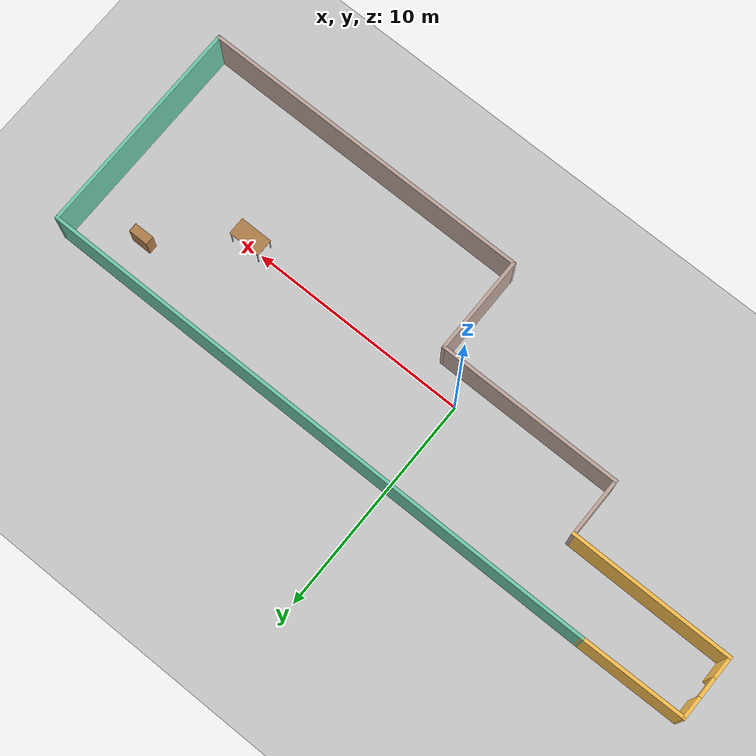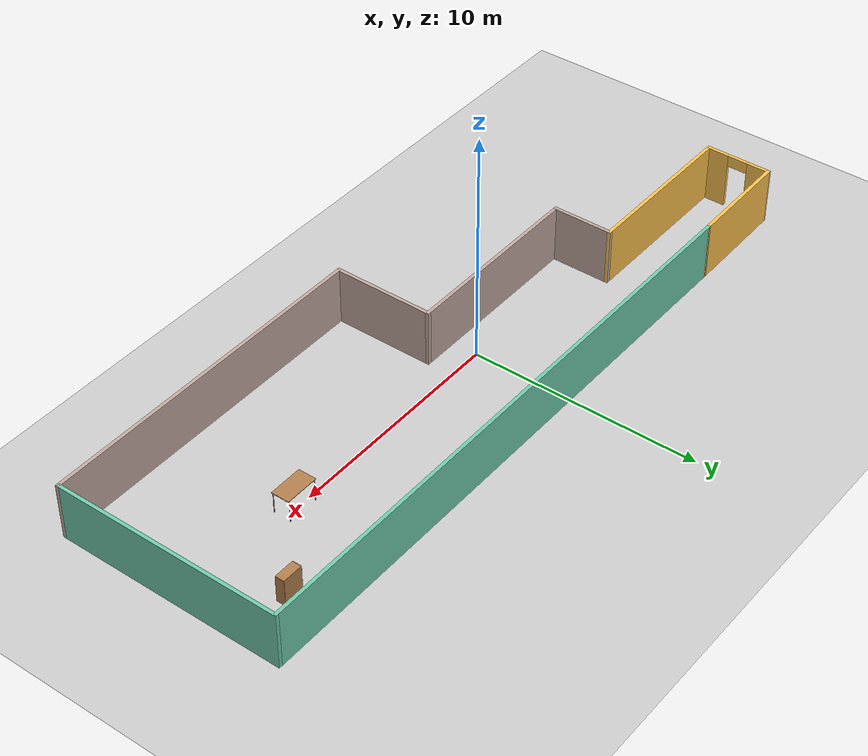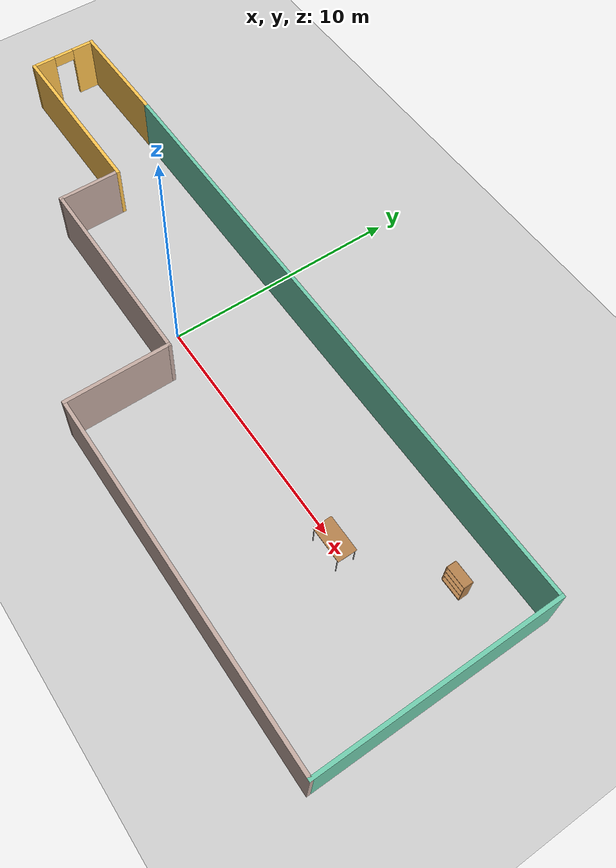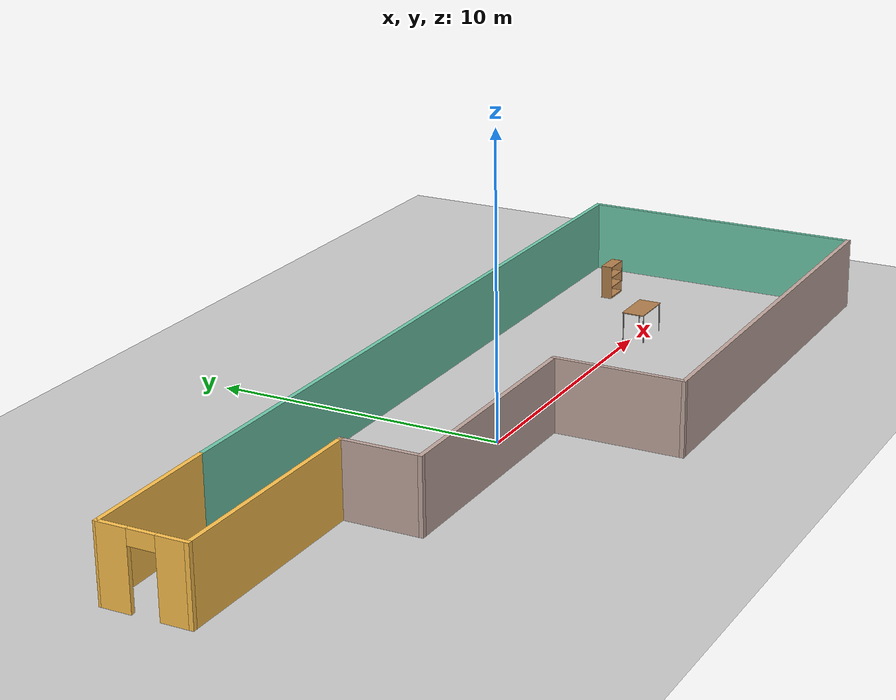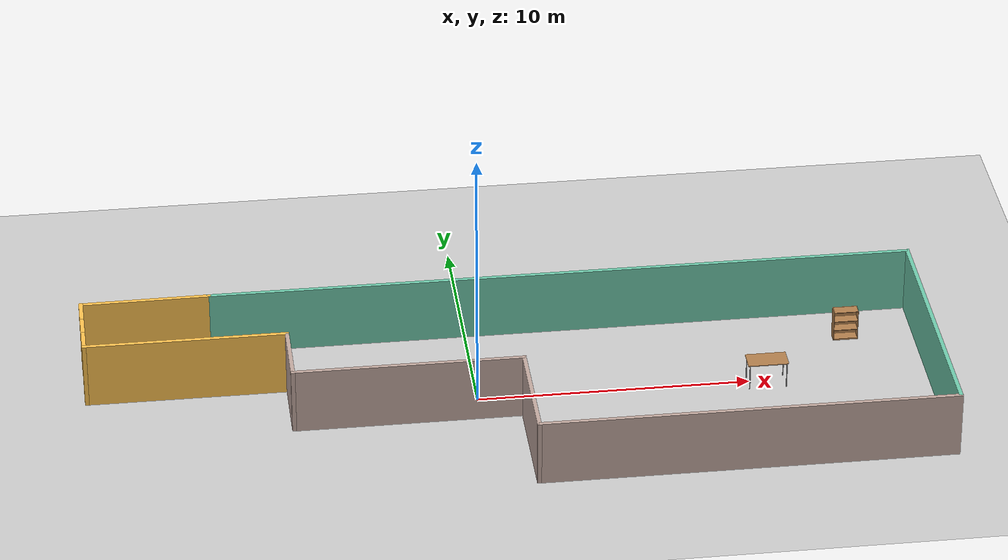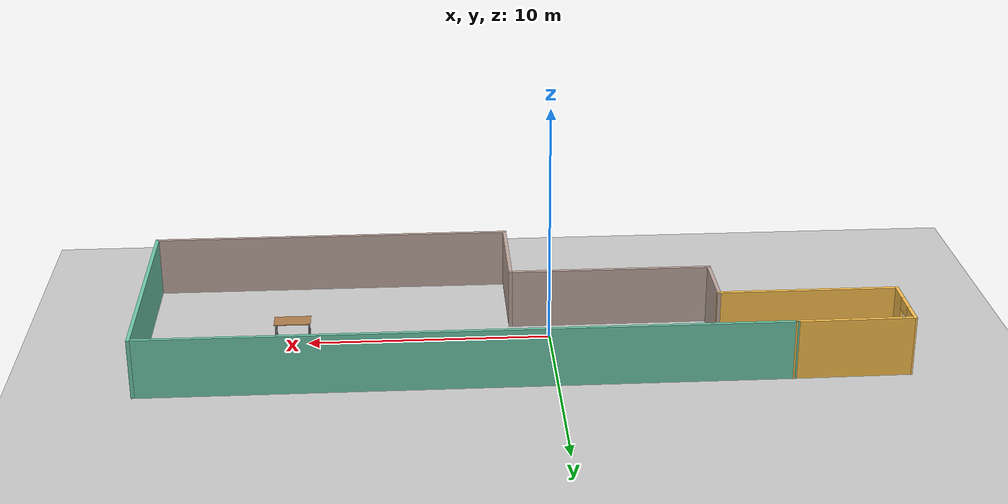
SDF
<sdf version="1.7">
 <world name="default">
  <light name="sun" type="directional">
   <pose>0 0 10 0 -0 0</pose>
   <diffuse>0.8 0.8 0.8 1</diffuse>
   <specular>0.2 0.2 0.2 1</specular>
   <attenuation>
    <range>1000</range>
    <constant>0.9</constant>
    <linear>0.01</linear>
    <quadratic>0.001</quadratic>
   </attenuation>
   <direction>-0.5 0.1 -0.9</direction>
   <spot><inner_angle>0</inner_angle><outer_angle>0</outer_angle><falloff>0</falloff></spot>
  </light>
  <model name="ground_plane">
   <static>1</static>
   <link name="link">
    <collision name="collision">
     <geometry><plane><normal>0 0 1</normal><size>100 100</size></plane></geometry>
     <surface><friction><ode><mu>100</mu><mu2>50</mu2></ode></friction></surface>
    </collision>
    <visual name="visual">
     <cast_shadows>0</cast_shadows>
     <geometry><plane><normal>0 0 1</normal><size>100 100</size></plane></geometry>
     <material>
      <script><uri>file://media/materials/scripts/gazebo.material</uri><name>Gazebo/Grey</name></script>
     </material>
    </visual>
   </link>
  </model>
  <gravity>0 0 -9.8</gravity>
  <magnetic_field>6e-06 2.3e-05 -4.2e-05</magnetic_field>
  <atmosphere type="adiabatic"/>
  <physics type="ode">
   <max_step_size>0.001</max_step_size>
   <real_time_factor>1</real_time_factor>
   <real_time_update_rate>1000</real_time_update_rate>
  </physics>
  <scene><ambient>0.4 0.4 0.4 1</ambient><background>0.7 0.7 0.7 1</background><shadows>1</shadows></scene>
  <spherical_coordinates>
   <surface_model>EARTH_WGS84</surface_model>
   <latitude_deg>0</latitude_deg>
   <longitude_deg>0</longitude_deg>
   <elevation>0</elevation>
   <heading_deg>0</heading_deg>
  </spherical_coordinates>
  <model name="Test_Gazebo">
   <pose>1.24984 -0.586575 0 0 -0 0</pose>
   <link name="Wall_10">
    <collision name="Wall_10_Collision">
     <geometry><box><size>8.5 0.15 2.5</size></box></geometry>
     <pose>0 0 1.25 0 -0 0</pose>
    </collision>
    <visual name="Wall_10_Visual">
     <pose>0 0 1.25 0 -0 0</pose>
     <geometry><box><size>8.5 0.15 2.5</size></box></geometry>
     <material>
      <script><uri>file://media/materials/scripts/gazebo.material</uri><name>Gazebo/Grey</name></script>
      <ambient>0.760784 0.662745 0.627451 1</ambient>
     </material>
     <meta><layer>0</layer></meta>
    </visual>
    <pose>-3.8746 -0.575396 0 0 -0 3.14159</pose>
   </link>
   <link name="Wall_11">
    <collision name="Wall_11_Collision">
     <geometry><box><size>2.75 0.15 2.5</size></box></geometry>
     <pose>0 0 1.25 0 -0 0</pose>
    </collision>
    <visual name="Wall_11_Visual">
     <pose>0 0 1.25 0 -0 0</pose>
     <geometry><box><size>2.75 0.15 2.5</size></box></geometry>
     <material>
      <script><uri>file://media/materials/scripts/gazebo.material</uri><name>Gazebo/Grey</name></script>
      <ambient>0.760784 0.662745 0.627451 1</ambient>
     </material>
     <meta><layer>0</layer></meta>
    </visual>
    <pose>-8.0496 0.724604 0 0 -0 1.5708</pose>
   </link>
   <link name="Wall_12">
    <collision name="Wall_12_Collision">
     <geometry><box><size>7.5 0.15 2.5</size></box></geometry>
     <pose>0 0 1.25 0 -0 0</pose>
    </collision>
    <visual name="Wall_12_Visual">
     <pose>0 0 1.25 0 -0 0</pose>
     <geometry><box><size>7.5 0.15 2.5</size></box></geometry>
     <material>
      <script><uri>file://media/materials/scripts/gazebo.material</uri><name>Gazebo/Grey</name></script>
      <ambient>1 0.764706 0.305882 1</ambient>
     </material>
     <meta><layer>0</layer></meta>
    </visual>
    <pose>-11.7246 2.0246 0 0 -0 3.14159</pose>
   </link>
   <link name="Wall_13">
    <pose>-15.3996 3.4496 0 0 -0 1.5708</pose>
    <visual name="Wall_13_Visual_0">
     <pose>-0.973251 0 1.25 0 -0 0</pose>
     <geometry><box><size>1.0535 0.15 2.5</size></box></geometry>
     <material>
      <script><uri>file://media/materials/scripts/gazebo.material</uri><name>Gazebo/Grey</name></script>
      <ambient>1 0.764706 0.305882 1</ambient>
     </material>
     <meta><layer>0</layer></meta>
    </visual>
    <collision name="Wall_13_Collision_0">
     <geometry><box><size>1.0535 0.15 2.5</size></box></geometry>
     <pose>-0.973251 0 1.25 0 -0 0</pose>
    </collision>
    <visual name="Wall_13_Visual_1">
     <pose>0.976749 0 1.25 0 -0 0</pose>
     <geometry><box><size>1.0465 0.15 2.5</size></box></geometry>
     <material>
      <script><uri>file://media/materials/scripts/gazebo.material</uri><name>Gazebo/Grey</name></script>
      <ambient>1 0.764706 0.305882 1</ambient>
     </material>
     <meta><layer>0</layer></meta>
    </visual>
    <collision name="Wall_13_Collision_1">
     <geometry><box><size>1.0465 0.15 2.5</size></box></geometry>
     <pose>0.976749 0 1.25 0 -0 0</pose>
    </collision>
    <visual name="Wall_13_Visual_2">
     <pose>0.003498 0 2.25 0 -0 0</pose>
     <geometry><box><size>0.9 0.15 0.5</size></box></geometry>
     <material>
      <script><uri>file://media/materials/scripts/gazebo.material</uri><name>Gazebo/Grey</name></script>
      <ambient>1 0.764706 0.305882 1</ambient>
     </material>
     <meta><layer>0</layer></meta>
    </visual>
    <collision name="Wall_13_Collision_2">
     <geometry><box><size>0.9 0.15 0.5</size></box></geometry>
     <pose>0.003498 0 2.25 0 -0 0</pose>
    </collision>
   </link>
   <link name="Wall_14">
    <collision name="Wall_14_Collision">
     <geometry><box><size>4.85027 0.15 2.5</size></box></geometry>
     <pose>0 0 1.25 0 -0 0</pose>
    </collision>
    <visual name="Wall_14_Visual">
     <pose>0 0 1.25 0 -0 0</pose>
     <geometry><box><size>4.85027 0.15 2.5</size></box></geometry>
     <material>
      <script><uri>file://media/materials/scripts/gazebo.material</uri><name>Gazebo/Grey</name></script>
      <ambient>1 0.764706 0.305882 1</ambient>
     </material>
     <meta><layer>0</layer></meta>
    </visual>
    <pose>-13.0496 4.8996 0 0 -0 0.010638</pose>
   </link>
   <link name="Wall_6">
    <collision name="Wall_6_Collision">
     <geometry><box><size>26.25 0.15 2.5</size></box></geometry>
     <pose>0 0 1.25 0 -0 0</pose>
    </collision>
    <visual name="Wall_6_Visual">
     <pose>0 0 1.25 0 -0 0</pose>
     <geometry><box><size>26.25 0.15 2.5</size></box></geometry>
     <material>
      <script><uri>file://media/materials/scripts/gazebo.material</uri><name>Gazebo/Grey</name></script>
      <ambient>0.435294 0.796078 0.67451 1</ambient>
     </material>
     <meta><layer>0</layer></meta>
    </visual>
    <pose>2.3504 4.9246 0 0 -0 0</pose>
   </link>
   <link name="Wall_7">
    <collision name="Wall_7_Collision">
     <geometry><box><size>10 0.15 2.5</size></box></geometry>
     <pose>0 0 1.25 0 -0 0</pose>
    </collision>
    <visual name="Wall_7_Visual">
     <pose>0 0 1.25 0 -0 0</pose>
     <geometry><box><size>10 0.15 2.5</size></box></geometry>
     <material>
      <script><uri>file://media/materials/scripts/gazebo.material</uri><name>Gazebo/Grey</name></script>
      <ambient>0.435294 0.796078 0.67451 1</ambient>
     </material>
     <meta><layer>0</layer></meta>
    </visual>
    <pose>15.4004 -0.000396 0 0 -0 -1.5708</pose>
   </link>
   <link name="Wall_8">
    <collision name="Wall_8_Collision">
     <geometry><box><size>15.25 0.15 2.5</size></box></geometry>
     <pose>0 0 1.25 0 -0 0</pose>
    </collision>
    <visual name="Wall_8_Visual">
     <pose>0 0 1.25 0 -0 0</pose>
     <geometry><box><size>15.25 0.15 2.5</size></box></geometry>
     <material>
      <script><uri>file://media/materials/scripts/gazebo.material</uri><name>Gazebo/Grey</name></script>
      <ambient>0.760784 0.662745 0.627451 1</ambient>
     </material>
     <meta><layer>0</layer></meta>
    </visual>
    <pose>7.8504 -4.9254 0 0 -0 3.14159</pose>
   </link>
   <link name="Wall_9">
    <collision name="Wall_9_Collision">
     <geometry><box><size>4.5 0.15 2.5</size></box></geometry>
     <pose>0 0 1.25 0 -0 0</pose>
    </collision>
    <visual name="Wall_9_Visual">
     <pose>0 0 1.25 0 -0 0</pose>
     <geometry><box><size>4.5 0.15 2.5</size></box></geometry>
     <material>
      <script><uri>file://media/materials/scripts/gazebo.material</uri><name>Gazebo/Grey</name></script>
      <ambient>0.760784 0.662745 0.627451 1</ambient>
     </material>
     <meta><layer>0</layer></meta>
    </visual>
    <pose>0.300396 -2.7504 0 0 -0 1.5708</pose>
   </link>
   <static>1</static>
  </model>
  <model name="bookshelf">
   <static>1</static>
   <link name="link">
    <inertial><mass>1</mass></inertial>
    <collision name="back">
     <pose>0 0.005 0.6 0 -0 0</pose>
     <geometry><box><size>0.9 0.01 1.2</size></box></geometry>
    </collision>
    <visual name="visual1">
     <pose>0 0.005 0.6 0 -0 0</pose>
     <geometry><box><size>0.9 0.01 1.2</size></box></geometry>
     <material>
      <script><uri>file://media/materials/scripts/gazebo.material</uri><name>Gazebo/Wood</name></script>
     </material>
    </visual>
    <collision name="left_side">
     <pose>0.45 -0.195 0.6 0 -0 0</pose>
     <geometry><box><size>0.02 0.4 1.2</size></box></geometry>
    </collision>
    <visual name="visual2">
     <pose>0.45 -0.195 0.6 0 -0 0</pose>
     <geometry><box><size>0.02 0.4 1.2</size></box></geometry>
     <material>
      <script><uri>file://media/materials/scripts/gazebo.material</uri><name>Gazebo/Wood</name></script>
     </material>
    </visual>
    <collision name="right_side">
     <pose>-0.45 -0.195 0.6 0 -0 0</pose>
     <geometry><box><size>0.02 0.4 1.2</size></box></geometry>
    </collision>
    <visual name="visual3">
     <pose>-0.45 -0.195 0.6 0 -0 0</pose>
     <geometry><box><size>0.02 0.4 1.2</size></box></geometry>
     <material>
      <script><uri>file://media/materials/scripts/gazebo.material</uri><name>Gazebo/Wood</name></script>
     </material>
    </visual>
    <collision name="bottom">
     <pose>0 -0.195 0.03 0 -0 0</pose>
     <geometry><box><size>0.88 0.4 0.06</size></box></geometry>
    </collision>
    <visual name="visual4">
     <pose>0 -0.195 0.03 0 -0 0</pose>
     <geometry><box><size>0.88 0.4 0.06</size></box></geometry>
     <material>
      <script><uri>file://media/materials/scripts/gazebo.material</uri><name>Gazebo/Wood</name></script>
     </material>
    </visual>
    <collision name="top">
     <pose>0 -0.195 1.19 0 -0 0</pose>
     <geometry><box><size>0.88 0.4 0.02</size></box></geometry>
    </collision>
    <visual name="visual5">
     <pose>0 -0.195 1.19 0 -0 0</pose>
     <geometry><box><size>0.88 0.4 0.02</size></box></geometry>
     <material>
      <script><uri>file://media/materials/scripts/gazebo.material</uri><name>Gazebo/Wood</name></script>
     </material>
    </visual>
    <collision name="low_shelf">
     <pose>0 -0.195 0.43 0 -0 0</pose>
     <geometry><box><size>0.88 0.4 0.02</size></box></geometry>
    </collision>
    <visual name="visual6">
     <pose>0 -0.195 0.43 0 -0 0</pose>
     <geometry><box><size>0.88 0.4 0.02</size></box></geometry>
     <material>
      <script><uri>file://media/materials/scripts/gazebo.material</uri><name>Gazebo/Wood</name></script>
     </material>
    </visual>
    <collision name="high_shelf">
     <pose>0 -0.195 0.8 0 -0 0</pose>
     <geometry><box><size>0.88 0.4 0.02</size></box></geometry>
    </collision>
    <visual name="visual7">
     <pose>0 -0.195 0.8 0 -0 0</pose>
     <geometry><box><size>0.88 0.4 0.02</size></box></geometry>
     <material>
      <script><uri>file://media/materials/scripts/gazebo.material</uri><name>Gazebo/Wood</name></script>
     </material>
    </visual>
   </link>
   <pose>14.0345 2.74998 0 0 -0 0</pose>
  </model>
  <model name="table">
   <static>1</static>
   <link name="link">
    <collision name="surface">
     <pose>0 0 1 0 -0 0</pose>
     <geometry><box><size>1.5 0.8 0.03</size></box></geometry>
     <surface><friction><ode><mu>0.6</mu><mu2>0.6</mu2></ode></friction></surface>
    </collision>
    <visual name="visual1">
     <pose>0 0 1 0 -0 0</pose>
     <geometry><box><size>1.5 0.8 0.03</size></box></geometry>
     <material>
      <script><uri>file://media/materials/scripts/gazebo.material</uri><name>Gazebo/Wood</name></script>
     </material>
    </visual>
    <collision name="front_left_leg">
     <pose>0.68 0.38 0.5 0 -0 0</pose>
     <geometry><cylinder><radius>0.02</radius><length>1</length></cylinder></geometry>
    </collision>
    <visual name="front_left_leg">
     <pose>0.68 0.38 0.5 0 -0 0</pose>
     <geometry><cylinder><radius>0.02</radius><length>1</length></cylinder></geometry>
     <material>
      <script><uri>file://media/materials/scripts/gazebo.material</uri><name>Gazebo/Grey</name></script>
     </material>
    </visual>
    <collision name="front_right_leg">
     <pose>0.68 -0.38 0.5 0 -0 0</pose>
     <geometry><cylinder><radius>0.02</radius><length>1</length></cylinder></geometry>
    </collision>
    <visual name="front_right_leg">
     <pose>0.68 -0.38 0.5 0 -0 0</pose>
     <geometry><cylinder><radius>0.02</radius><length>1</length></cylinder></geometry>
     <material>
      <script><uri>file://media/materials/scripts/gazebo.material</uri><name>Gazebo/Grey</name></script>
     </material>
    </visual>
    <collision name="back_right_leg">
     <pose>-0.68 -0.38 0.5 0 -0 0</pose>
     <geometry><cylinder><radius>0.02</radius><length>1</length></cylinder></geometry>
    </collision>
    <visual name="back_right_leg">
     <pose>-0.68 -0.38 0.5 0 -0 0</pose>
     <geometry><cylinder><radius>0.02</radius><length>1</length></cylinder></geometry>
     <material>
      <script><uri>file://media/materials/scripts/gazebo.material</uri><name>Gazebo/Grey</name></script>
     </material>
    </visual>
    <collision name="back_left_leg">
     <pose>-0.68 0.38 0.5 0 -0 0</pose>
     <geometry><cylinder><radius>0.02</radius><length>1</length></cylinder></geometry>
    </collision>
    <visual name="back_left_leg">
     <pose>-0.68 0.38 0.5 0 -0 0</pose>
     <geometry><cylinder><radius>0.02</radius><length>1</length></cylinder></geometry>
     <material>
      <script><uri>file://media/materials/scripts/gazebo.material</uri><name>Gazebo/Grey</name></script>
     </material>
    </visual>
   </link>
   <pose>10.6234 -0.13427 0 0 -0 0</pose>
  </model>
 </world>
</sdf>
